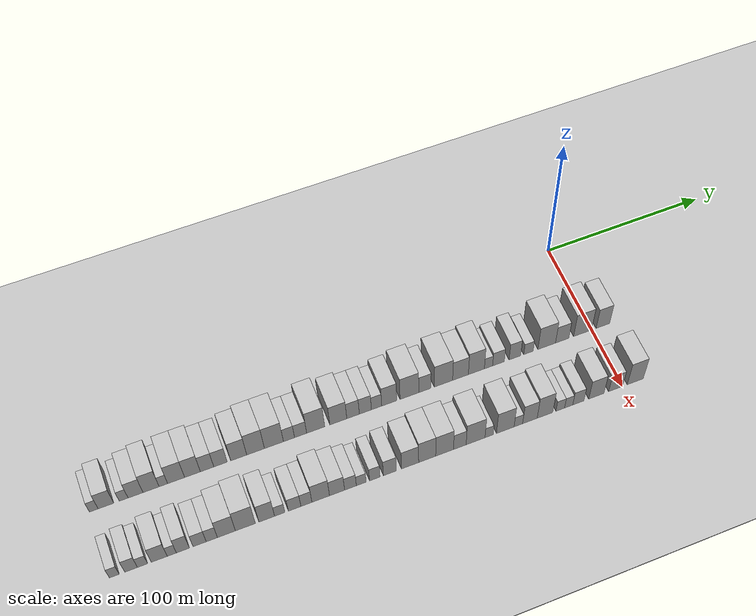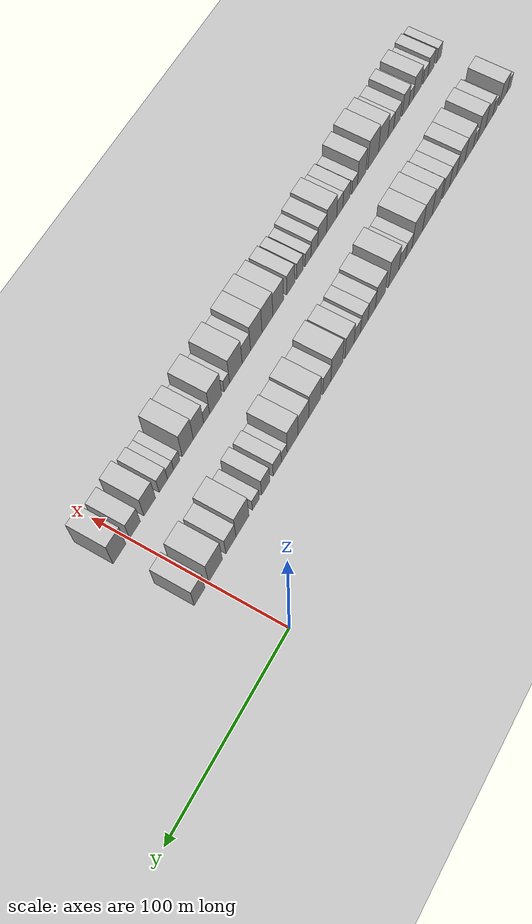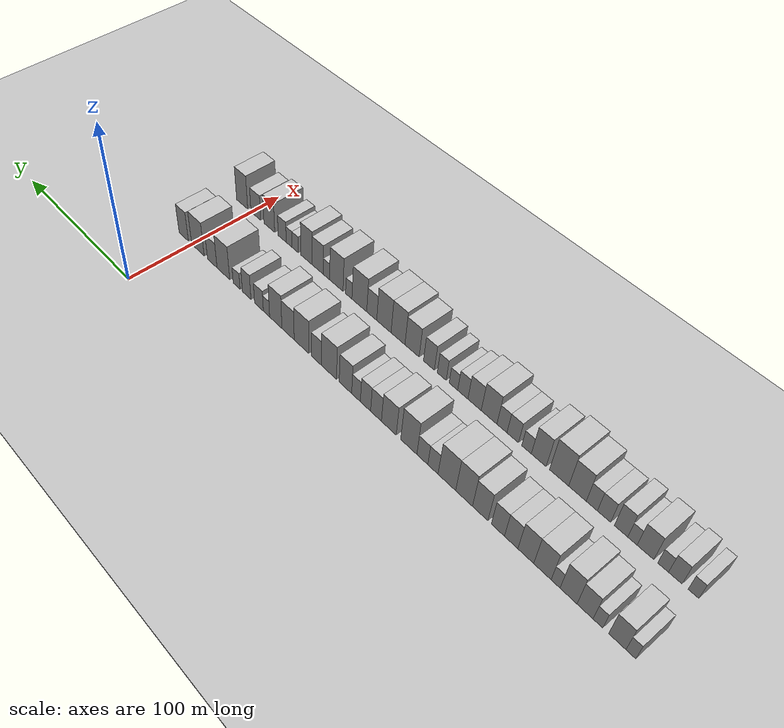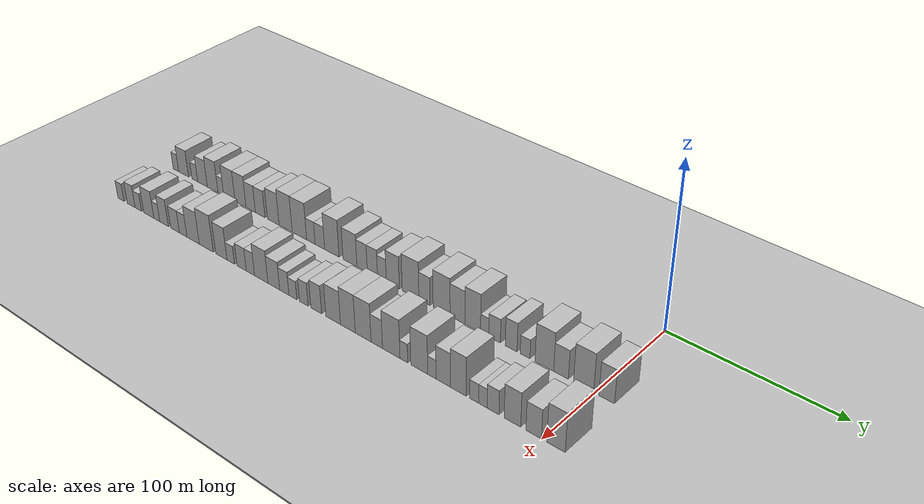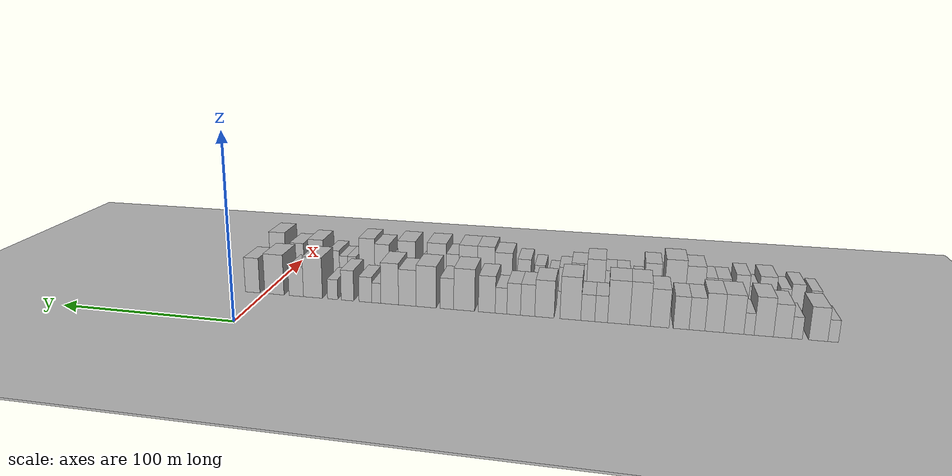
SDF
<sdf version="1.6">
 <world name="default">
  <include><name>ground_plane_1</name><uri>model://HANNAS_ground_plane</uri></include>
  <include>
   <name>ground_plane_2</name>
   <uri>model://HANNAS_ground_plane</uri>
   <pose>100 0 0  0 0 0</pose>
  </include>
  <model name="building_1">
   <static>1</static>
   <pose>50.0000 -297.5715 0 0.000000 0.000000 0.000000</pose>
   <link name="link">
    <pose>0 0 6.00 0 0 0</pose>
    <collision name="collision"><geometry><box><size>20.0000 4.8570 12.0000</size></box></geometry></collision>
    <visual name="visual">
     <cast_shadows>0</cast_shadows>
     <geometry><box><size>20.0000 4.8570 12.0000</size></box></geometry>
     <material>
      <script>
       <uri>model://HANNAS_wall/materials/scripts</uri>
       <uri>model://HANNAS_wall/materials/textures</uri>
       <name>vrc/HANNAS_wall</name>
      </script>
     </material>
    </visual>
   </link>
  </model>
  <model name="building_2">
   <static>1</static>
   <pose>50.0000 -290.7994 0 0.000000 0.000000 0.000000</pose>
   <link name="link">
    <pose>0 0 9.00 0 0 0</pose>
    <collision name="collision"><geometry><box><size>20.0000 8.6872 18.0000</size></box></geometry></collision>
    <visual name="visual">
     <cast_shadows>0</cast_shadows>
     <geometry><box><size>20.0000 8.6872 18.0000</size></box></geometry>
     <material>
      <script>
       <uri>model://HANNAS_wall/materials/scripts</uri>
       <uri>model://HANNAS_wall/materials/textures</uri>
       <name>vrc/HANNAS_wall</name>
      </script>
     </material>
    </visual>
   </link>
  </model>
  <model name="building_3">
   <static>1</static>
   <pose>50.0000 -280.9802 0 0.000000 0.000000 0.000000</pose>
   <link name="link">
    <pose>0 0 6.00 0 0 0</pose>
    <collision name="collision"><geometry><box><size>20.0000 4.9514 12.0000</size></box></geometry></collision>
    <visual name="visual">
     <cast_shadows>0</cast_shadows>
     <geometry><box><size>20.0000 4.9514 12.0000</size></box></geometry>
     <material>
      <script>
       <uri>model://HANNAS_wall/materials/scripts</uri>
       <uri>model://HANNAS_wall/materials/textures</uri>
       <name>vrc/HANNAS_wall</name>
      </script>
     </material>
    </visual>
   </link>
  </model>
  <model name="building_4">
   <static>1</static>
   <pose>50.0000 -274.3003 0 0.000000 0.000000 0.000000</pose>
   <link name="link">
    <pose>0 0 9.00 0 0 0</pose>
    <collision name="collision"><geometry><box><size>20.0000 8.4084 18.0000</size></box></geometry></collision>
    <visual name="visual">
     <cast_shadows>0</cast_shadows>
     <geometry><box><size>20.0000 8.4084 18.0000</size></box></geometry>
     <material>
      <script>
       <uri>model://HANNAS_wall/materials/scripts</uri>
       <uri>model://HANNAS_wall/materials/textures</uri>
       <name>vrc/HANNAS_wall</name>
      </script>
     </material>
    </visual>
   </link>
  </model>
  <model name="building_5">
   <static>1</static>
   <pose>50.0000 -265.5569 0 0.000000 0.000000 0.000000</pose>
   <link name="link">
    <pose>0 0 10.50 0 0 0</pose>
    <collision name="collision"><geometry><box><size>20.0000 9.0783 21.0000</size></box></geometry></collision>
    <visual name="visual">
     <cast_shadows>0</cast_shadows>
     <geometry><box><size>20.0000 9.0783 21.0000</size></box></geometry>
     <material>
      <script>
       <uri>model://HANNAS_wall/materials/scripts</uri>
       <uri>model://HANNAS_wall/materials/textures</uri>
       <name>vrc/HANNAS_wall</name>
      </script>
     </material>
    </visual>
   </link>
  </model>
  <model name="building_6">
   <static>1</static>
   <pose>50.0000 -258.6084 0 0.000000 0.000000 0.000000</pose>
   <link name="link">
    <pose>0 0 6.00 0 0 0</pose>
    <collision name="collision"><geometry><box><size>20.0000 4.8188 12.0000</size></box></geometry></collision>
    <visual name="visual">
     <cast_shadows>0</cast_shadows>
     <geometry><box><size>20.0000 4.8188 12.0000</size></box></geometry>
     <material>
      <script>
       <uri>model://HANNAS_wall/materials/scripts</uri>
       <uri>model://HANNAS_wall/materials/textures</uri>
       <name>vrc/HANNAS_wall</name>
      </script>
     </material>
    </visual>
   </link>
  </model>
  <model name="building_7">
   <static>1</static>
   <pose>50.0000 -251.3825 0 0.000000 0.000000 0.000000</pose>
   <link name="link">
    <pose>0 0 10.50 0 0 0</pose>
    <collision name="collision"><geometry><box><size>20.0000 9.6330 21.0000</size></box></geometry></collision>
    <visual name="visual">
     <cast_shadows>0</cast_shadows>
     <geometry><box><size>20.0000 9.6330 21.0000</size></box></geometry>
     <material>
      <script>
       <uri>model://HANNAS_wall/materials/scripts</uri>
       <uri>model://HANNAS_wall/materials/textures</uri>
       <name>vrc/HANNAS_wall</name>
      </script>
     </material>
    </visual>
   </link>
  </model>
  <model name="building_8">
   <static>1</static>
   <pose>50.0000 -242.0816 0 0.000000 0.000000 0.000000</pose>
   <link name="link">
    <pose>0 0 10.50 0 0 0</pose>
    <collision name="collision"><geometry><box><size>20.0000 8.9687 21.0000</size></box></geometry></collision>
    <visual name="visual">
     <cast_shadows>0</cast_shadows>
     <geometry><box><size>20.0000 8.9687 21.0000</size></box></geometry>
     <material>
      <script>
       <uri>model://HANNAS_wall/materials/scripts</uri>
       <uri>model://HANNAS_wall/materials/textures</uri>
       <name>vrc/HANNAS_wall</name>
      </script>
     </material>
    </visual>
   </link>
  </model>
  <model name="building_9">
   <static>1</static>
   <pose>50.0000 -233.7496 0 0.000000 0.000000 0.000000</pose>
   <link name="link">
    <pose>0 0 9.00 0 0 0</pose>
    <collision name="collision"><geometry><box><size>20.0000 7.6954 18.0000</size></box></geometry></collision>
    <visual name="visual">
     <cast_shadows>0</cast_shadows>
     <geometry><box><size>20.0000 7.6954 18.0000</size></box></geometry>
     <material>
      <script>
       <uri>model://HANNAS_wall/materials/scripts</uri>
       <uri>model://HANNAS_wall/materials/textures</uri>
       <name>vrc/HANNAS_wall</name>
      </script>
     </material>
    </visual>
   </link>
  </model>
  <model name="building_10">
   <static>1</static>
   <pose>50.0000 -226.0455 0 0.000000 0.000000 0.000000</pose>
   <link name="link">
    <pose>0 0 9.00 0 0 0</pose>
    <collision name="collision"><geometry><box><size>20.0000 7.7126 18.0000</size></box></geometry></collision>
    <visual name="visual">
     <cast_shadows>0</cast_shadows>
     <geometry><box><size>20.0000 7.7126 18.0000</size></box></geometry>
     <material>
      <script>
       <uri>model://HANNAS_wall/materials/scripts</uri>
       <uri>model://HANNAS_wall/materials/textures</uri>
       <name>vrc/HANNAS_wall</name>
      </script>
     </material>
    </visual>
   </link>
  </model>
  <model name="building_11">
   <static>1</static>
   <pose>50.0000 -215.5581 0 0.000000 0.000000 0.000000</pose>
   <link name="link">
    <pose>0 0 10.50 0 0 0</pose>
    <collision name="collision"><geometry><box><size>20.0000 9.2623 21.0000</size></box></geometry></collision>
    <visual name="visual">
     <cast_shadows>0</cast_shadows>
     <geometry><box><size>20.0000 9.2623 21.0000</size></box></geometry>
     <material>
      <script>
       <uri>model://HANNAS_wall/materials/scripts</uri>
       <uri>model://HANNAS_wall/materials/textures</uri>
       <name>vrc/HANNAS_wall</name>
      </script>
     </material>
    </visual>
   </link>
  </model>
  <model name="building_12">
   <static>1</static>
   <pose>50.0000 -205.7762 0 0.000000 0.000000 0.000000</pose>
   <link name="link">
    <pose>0 0 12.00 0 0 0</pose>
    <collision name="collision"><geometry><box><size>20.0000 10.3015 24.0000</size></box></geometry></collision>
    <visual name="visual">
     <cast_shadows>0</cast_shadows>
     <geometry><box><size>20.0000 10.3015 24.0000</size></box></geometry>
     <material>
      <script>
       <uri>model://HANNAS_wall/materials/scripts</uri>
       <uri>model://HANNAS_wall/materials/textures</uri>
       <name>vrc/HANNAS_wall</name>
      </script>
     </material>
    </visual>
   </link>
  </model>
  <model name="building_13">
   <static>1</static>
   <pose>50.0000 -195.0669 0 0.000000 0.000000 0.000000</pose>
   <link name="link">
    <pose>0 0 12.00 0 0 0</pose>
    <collision name="collision"><geometry><box><size>20.0000 11.1171 24.0000</size></box></geometry></collision>
    <visual name="visual">
     <cast_shadows>0</cast_shadows>
     <geometry><box><size>20.0000 11.1171 24.0000</size></box></geometry>
     <material>
      <script>
       <uri>model://HANNAS_wall/materials/scripts</uri>
       <uri>model://HANNAS_wall/materials/textures</uri>
       <name>vrc/HANNAS_wall</name>
      </script>
     </material>
    </visual>
   </link>
  </model>
  <model name="building_14">
   <static>1</static>
   <pose>50.0000 -186.2584 0 0.000000 0.000000 0.000000</pose>
   <link name="link">
    <pose>0 0 7.50 0 0 0</pose>
    <collision name="collision"><geometry><box><size>20.0000 6.4999 15.0000</size></box></geometry></collision>
    <visual name="visual">
     <cast_shadows>0</cast_shadows>
     <geometry><box><size>20.0000 6.4999 15.0000</size></box></geometry>
     <material>
      <script>
       <uri>model://HANNAS_wall/materials/scripts</uri>
       <uri>model://HANNAS_wall/materials/textures</uri>
       <name>vrc/HANNAS_wall</name>
      </script>
     </material>
    </visual>
   </link>
  </model>
  <model name="building_15">
   <static>1</static>
   <pose>50.0000 -179.4305 0 0.000000 0.000000 0.000000</pose>
   <link name="link">
    <pose>0 0 7.50 0 0 0</pose>
    <collision name="collision"><geometry><box><size>20.0000 7.1558 15.0000</size></box></geometry></collision>
    <visual name="visual">
     <cast_shadows>0</cast_shadows>
     <geometry><box><size>20.0000 7.1558 15.0000</size></box></geometry>
     <material>
      <script>
       <uri>model://HANNAS_wall/materials/scripts</uri>
       <uri>model://HANNAS_wall/materials/textures</uri>
       <name>vrc/HANNAS_wall</name>
      </script>
     </material>
    </visual>
   </link>
  </model>
  <model name="building_16">
   <static>1</static>
   <pose>50.0000 -170.4923 0 0.000000 0.000000 0.000000</pose>
   <link name="link">
    <pose>0 0 12.00 0 0 0</pose>
    <collision name="collision"><geometry><box><size>20.0000 10.7208 24.0000</size></box></geometry></collision>
    <visual name="visual">
     <cast_shadows>0</cast_shadows>
     <geometry><box><size>20.0000 10.7208 24.0000</size></box></geometry>
     <material>
      <script>
       <uri>model://HANNAS_wall/materials/scripts</uri>
       <uri>model://HANNAS_wall/materials/textures</uri>
       <name>vrc/HANNAS_wall</name>
      </script>
     </material>
    </visual>
   </link>
  </model>
  <model name="building_17">
   <static>1</static>
   <pose>50.0000 -157.0809 0 0.000000 0.000000 0.000000</pose>
   <link name="link">
    <pose>0 0 10.50 0 0 0</pose>
    <collision name="collision"><geometry><box><size>20.0000 10.1021 21.0000</size></box></geometry></collision>
    <visual name="visual">
     <cast_shadows>0</cast_shadows>
     <geometry><box><size>20.0000 10.1021 21.0000</size></box></geometry>
     <material>
      <script>
       <uri>model://HANNAS_wall/materials/scripts</uri>
       <uri>model://HANNAS_wall/materials/textures</uri>
       <name>vrc/HANNAS_wall</name>
      </script>
     </material>
    </visual>
   </link>
  </model>
  <model name="building_18">
   <static>1</static>
   <pose>50.0000 -148.2817 0 0.000000 0.000000 0.000000</pose>
   <link name="link">
    <pose>0 0 9.00 0 0 0</pose>
    <collision name="collision"><geometry><box><size>20.0000 7.4962 18.0000</size></box></geometry></collision>
    <visual name="visual">
     <cast_shadows>0</cast_shadows>
     <geometry><box><size>20.0000 7.4962 18.0000</size></box></geometry>
     <material>
      <script>
       <uri>model://HANNAS_wall/materials/scripts</uri>
       <uri>model://HANNAS_wall/materials/textures</uri>
       <name>vrc/HANNAS_wall</name>
      </script>
     </material>
    </visual>
   </link>
  </model>
  <model name="building_19">
   <static>1</static>
   <pose>50.0000 -140.9135 0 0.000000 0.000000 0.000000</pose>
   <link name="link">
    <pose>0 0 9.00 0 0 0</pose>
    <collision name="collision"><geometry><box><size>20.0000 7.2403 18.0000</size></box></geometry></collision>
    <visual name="visual">
     <cast_shadows>0</cast_shadows>
     <geometry><box><size>20.0000 7.2403 18.0000</size></box></geometry>
     <material>
      <script>
       <uri>model://HANNAS_wall/materials/scripts</uri>
       <uri>model://HANNAS_wall/materials/textures</uri>
       <name>vrc/HANNAS_wall</name>
      </script>
     </material>
    </visual>
   </link>
  </model>
  <model name="building_20">
   <static>1</static>
   <pose>50.0000 -134.1900 0 0.000000 0.000000 0.000000</pose>
   <link name="link">
    <pose>0 0 7.50 0 0 0</pose>
    <collision name="collision"><geometry><box><size>20.0000 6.2068 15.0000</size></box></geometry></collision>
    <visual name="visual">
     <cast_shadows>0</cast_shadows>
     <geometry><box><size>20.0000 6.2068 15.0000</size></box></geometry>
     <material>
      <script>
       <uri>model://HANNAS_wall/materials/scripts</uri>
       <uri>model://HANNAS_wall/materials/textures</uri>
       <name>vrc/HANNAS_wall</name>
      </script>
     </material>
    </visual>
   </link>
  </model>
  <model name="building_21">
   <static>1</static>
   <pose>50.0000 -126.5503 0 0.000000 0.000000 0.000000</pose>
   <link name="link">
    <pose>0 0 10.50 0 0 0</pose>
    <collision name="collision"><geometry><box><size>20.0000 9.0725 21.0000</size></box></geometry></collision>
    <visual name="visual">
     <cast_shadows>0</cast_shadows>
     <geometry><box><size>20.0000 9.0725 21.0000</size></box></geometry>
     <material>
      <script>
       <uri>model://HANNAS_wall/materials/scripts</uri>
       <uri>model://HANNAS_wall/materials/textures</uri>
       <name>vrc/HANNAS_wall</name>
      </script>
     </material>
    </visual>
   </link>
  </model>
  <model name="building_22">
   <static>1</static>
   <pose>50.0000 -114.3188 0 0.000000 0.000000 0.000000</pose>
   <link name="link">
    <pose>0 0 12.00 0 0 0</pose>
    <collision name="collision"><geometry><box><size>20.0000 11.3905 24.0000</size></box></geometry></collision>
    <visual name="visual">
     <cast_shadows>0</cast_shadows>
     <geometry><box><size>20.0000 11.3905 24.0000</size></box></geometry>
     <material>
      <script>
       <uri>model://HANNAS_wall/materials/scripts</uri>
       <uri>model://HANNAS_wall/materials/textures</uri>
       <name>vrc/HANNAS_wall</name>
      </script>
     </material>
    </visual>
   </link>
  </model>
  <model name="building_23">
   <static>1</static>
   <pose>50.0000 -104.8672 0 0.000000 0.000000 0.000000</pose>
   <link name="link">
    <pose>0 0 9.00 0 0 0</pose>
    <collision name="collision"><geometry><box><size>20.0000 7.5128 18.0000</size></box></geometry></collision>
    <visual name="visual">
     <cast_shadows>0</cast_shadows>
     <geometry><box><size>20.0000 7.5128 18.0000</size></box></geometry>
     <material>
      <script>
       <uri>model://HANNAS_wall/materials/scripts</uri>
       <uri>model://HANNAS_wall/materials/textures</uri>
       <name>vrc/HANNAS_wall</name>
      </script>
     </material>
    </visual>
   </link>
  </model>
  <model name="building_24">
   <static>1</static>
   <pose>50.0000 -93.4741 0 0.000000 0.000000 0.000000</pose>
   <link name="link">
    <pose>0 0 12.00 0 0 0</pose>
    <collision name="collision"><geometry><box><size>20.0000 11.2733 24.0000</size></box></geometry></collision>
    <visual name="visual">
     <cast_shadows>0</cast_shadows>
     <geometry><box><size>20.0000 11.2733 24.0000</size></box></geometry>
     <material>
      <script>
       <uri>model://HANNAS_wall/materials/scripts</uri>
       <uri>model://HANNAS_wall/materials/textures</uri>
       <name>vrc/HANNAS_wall</name>
      </script>
     </material>
    </visual>
   </link>
  </model>
  <model name="building_25">
   <static>1</static>
   <pose>50.0000 -82.9544 0 0.000000 0.000000 0.000000</pose>
   <link name="link">
    <pose>0 0 10.50 0 0 0</pose>
    <collision name="collision"><geometry><box><size>20.0000 9.7661 21.0000</size></box></geometry></collision>
    <visual name="visual">
     <cast_shadows>0</cast_shadows>
     <geometry><box><size>20.0000 9.7661 21.0000</size></box></geometry>
     <material>
      <script>
       <uri>model://HANNAS_wall/materials/scripts</uri>
       <uri>model://HANNAS_wall/materials/textures</uri>
       <name>vrc/HANNAS_wall</name>
      </script>
     </material>
    </visual>
   </link>
  </model>
  <model name="building_26">
   <static>1</static>
   <pose>50.0000 -73.1143 0 0.000000 0.000000 0.000000</pose>
   <link name="link">
    <pose>0 0 12.00 0 0 0</pose>
    <collision name="collision"><geometry><box><size>20.0000 9.9142 24.0000</size></box></geometry></collision>
    <visual name="visual">
     <cast_shadows>0</cast_shadows>
     <geometry><box><size>20.0000 9.9142 24.0000</size></box></geometry>
     <material>
      <script>
       <uri>model://HANNAS_wall/materials/scripts</uri>
       <uri>model://HANNAS_wall/materials/textures</uri>
       <name>vrc/HANNAS_wall</name>
      </script>
     </material>
    </visual>
   </link>
  </model>
  <model name="building_27">
   <static>1</static>
   <pose>50.0000 -65.5913 0 0.000000 0.000000 0.000000</pose>
   <link name="link">
    <pose>0 0 6.00 0 0 0</pose>
    <collision name="collision"><geometry><box><size>20.0000 5.1318 12.0000</size></box></geometry></collision>
    <visual name="visual">
     <cast_shadows>0</cast_shadows>
     <geometry><box><size>20.0000 5.1318 12.0000</size></box></geometry>
     <material>
      <script>
       <uri>model://HANNAS_wall/materials/scripts</uri>
       <uri>model://HANNAS_wall/materials/textures</uri>
       <name>vrc/HANNAS_wall</name>
      </script>
     </material>
    </visual>
   </link>
  </model>
  <model name="building_28">
   <static>1</static>
   <pose>50.0000 -59.3571 0 0.000000 0.000000 0.000000</pose>
   <link name="link">
    <pose>0 0 7.50 0 0 0</pose>
    <collision name="collision"><geometry><box><size>20.0000 7.3364 15.0000</size></box></geometry></collision>
    <visual name="visual">
     <cast_shadows>0</cast_shadows>
     <geometry><box><size>20.0000 7.3364 15.0000</size></box></geometry>
     <material>
      <script>
       <uri>model://HANNAS_wall/materials/scripts</uri>
       <uri>model://HANNAS_wall/materials/textures</uri>
       <name>vrc/HANNAS_wall</name>
      </script>
     </material>
    </visual>
   </link>
  </model>
  <model name="building_29">
   <static>1</static>
   <pose>50.0000 -49.0608 0 0.000000 0.000000 0.000000</pose>
   <link name="link">
    <pose>0 0 9.00 0 0 0</pose>
    <collision name="collision"><geometry><box><size>20.0000 7.2563 18.0000</size></box></geometry></collision>
    <visual name="visual">
     <cast_shadows>0</cast_shadows>
     <geometry><box><size>20.0000 7.2563 18.0000</size></box></geometry>
     <material>
      <script>
       <uri>model://HANNAS_wall/materials/scripts</uri>
       <uri>model://HANNAS_wall/materials/textures</uri>
       <name>vrc/HANNAS_wall</name>
      </script>
     </material>
    </visual>
   </link>
  </model>
  <model name="building_30">
   <static>1</static>
   <pose>50.0000 -40.4750 0 0.000000 0.000000 0.000000</pose>
   <link name="link">
    <pose>0 0 6.00 0 0 0</pose>
    <collision name="collision"><geometry><box><size>20.0000 5.9151 12.0000</size></box></geometry></collision>
    <visual name="visual">
     <cast_shadows>0</cast_shadows>
     <geometry><box><size>20.0000 5.9151 12.0000</size></box></geometry>
     <material>
      <script>
       <uri>model://HANNAS_wall/materials/scripts</uri>
       <uri>model://HANNAS_wall/materials/textures</uri>
       <name>vrc/HANNAS_wall</name>
      </script>
     </material>
    </visual>
   </link>
  </model>
  <model name="building_31">
   <static>1</static>
   <pose>50.0000 -28.9358 0 0.000000 0.000000 0.000000</pose>
   <link name="link">
    <pose>0 0 12.00 0 0 0</pose>
    <collision name="collision"><geometry><box><size>20.0000 11.1633 24.0000</size></box></geometry></collision>
    <visual name="visual">
     <cast_shadows>0</cast_shadows>
     <geometry><box><size>20.0000 11.1633 24.0000</size></box></geometry>
     <material>
      <script>
       <uri>model://HANNAS_wall/materials/scripts</uri>
       <uri>model://HANNAS_wall/materials/textures</uri>
       <name>vrc/HANNAS_wall</name>
      </script>
     </material>
    </visual>
   </link>
  </model>
  <model name="building_32">
   <static>1</static>
   <pose>50.0000 -19.0690 0 0.000000 0.000000 0.000000</pose>
   <link name="link">
    <pose>0 0 9.00 0 0 0</pose>
    <collision name="collision"><geometry><box><size>20.0000 8.5704 18.0000</size></box></geometry></collision>
    <visual name="visual">
     <cast_shadows>0</cast_shadows>
     <geometry><box><size>20.0000 8.5704 18.0000</size></box></geometry>
     <material>
      <script>
       <uri>model://HANNAS_wall/materials/scripts</uri>
       <uri>model://HANNAS_wall/materials/textures</uri>
       <name>vrc/HANNAS_wall</name>
      </script>
     </material>
    </visual>
   </link>
  </model>
  <model name="building_33">
   <static>1</static>
   <pose>50.0000 -6.0298 0 0.000000 0.000000 0.000000</pose>
   <link name="link">
    <pose>0 0 12.00 0 0 0</pose>
    <collision name="collision"><geometry><box><size>20.0000 11.5079 24.0000</size></box></geometry></collision>
    <visual name="visual">
     <cast_shadows>0</cast_shadows>
     <geometry><box><size>20.0000 11.5079 24.0000</size></box></geometry>
     <material>
      <script>
       <uri>model://HANNAS_wall/materials/scripts</uri>
       <uri>model://HANNAS_wall/materials/textures</uri>
       <name>vrc/HANNAS_wall</name>
      </script>
     </material>
    </visual>
   </link>
  </model>
  <model name="building_34">
   <static>1</static>
   <pose>50.0000 7.1088 0 0.000000 0.000000 0.000000</pose>
   <link name="link">
    <pose>0 0 10.50 0 0 0</pose>
    <collision name="collision"><geometry><box><size>20.0000 8.7692 21.0000</size></box></geometry></collision>
    <visual name="visual">
     <cast_shadows>0</cast_shadows>
     <geometry><box><size>20.0000 8.7692 21.0000</size></box></geometry>
     <material>
      <script>
       <uri>model://HANNAS_wall/materials/scripts</uri>
       <uri>model://HANNAS_wall/materials/textures</uri>
       <name>vrc/HANNAS_wall</name>
      </script>
     </material>
    </visual>
   </link>
  </model>
  <model name="building_70">
   <static>1</static>
   <pose>90.0000 -297.3264 0 0.000000 0.000000 0.000000</pose>
   <link name="link">
    <pose>0 0 6.00 0 0 0</pose>
    <collision name="collision"><geometry><box><size>20.0000 5.3473 12.0000</size></box></geometry></collision>
    <visual name="visual">
     <cast_shadows>0</cast_shadows>
     <geometry><box><size>20.0000 5.3473 12.0000</size></box></geometry>
     <material>
      <script>
       <uri>model://HANNAS_wall/materials/scripts</uri>
       <uri>model://HANNAS_wall/materials/textures</uri>
       <name>vrc/HANNAS_wall</name>
      </script>
     </material>
    </visual>
   </link>
  </model>
  <model name="building_71">
   <static>1</static>
   <pose>90.0000 -288.2125 0 0.000000 0.000000 0.000000</pose>
   <link name="link">
    <pose>0 0 7.50 0 0 0</pose>
    <collision name="collision"><geometry><box><size>20.0000 6.8805 15.0000</size></box></geometry></collision>
    <visual name="visual">
     <cast_shadows>0</cast_shadows>
     <geometry><box><size>20.0000 6.8805 15.0000</size></box></geometry>
     <material>
      <script>
       <uri>model://HANNAS_wall/materials/scripts</uri>
       <uri>model://HANNAS_wall/materials/textures</uri>
       <name>vrc/HANNAS_wall</name>
      </script>
     </material>
    </visual>
   </link>
  </model>
  <model name="building_72">
   <static>1</static>
   <pose>90.0000 -281.9907 0 0.000000 0.000000 0.000000</pose>
   <link name="link">
    <pose>0 0 6.00 0 0 0</pose>
    <collision name="collision"><geometry><box><size>20.0000 5.5632 12.0000</size></box></geometry></collision>
    <visual name="visual">
     <cast_shadows>0</cast_shadows>
     <geometry><box><size>20.0000 5.5632 12.0000</size></box></geometry>
     <material>
      <script>
       <uri>model://HANNAS_wall/materials/scripts</uri>
       <uri>model://HANNAS_wall/materials/textures</uri>
       <name>vrc/HANNAS_wall</name>
      </script>
     </material>
    </visual>
   </link>
  </model>
  <model name="building_73">
   <static>1</static>
   <pose>90.0000 -272.8366 0 0.000000 0.000000 0.000000</pose>
   <link name="link">
    <pose>0 0 9.00 0 0 0</pose>
    <collision name="collision"><geometry><box><size>20.0000 8.7450 18.0000</size></box></geometry></collision>
    <visual name="visual">
     <cast_shadows>0</cast_shadows>
     <geometry><box><size>20.0000 8.7450 18.0000</size></box></geometry>
     <material>
      <script>
       <uri>model://HANNAS_wall/materials/scripts</uri>
       <uri>model://HANNAS_wall/materials/textures</uri>
       <name>vrc/HANNAS_wall</name>
      </script>
     </material>
    </visual>
   </link>
  </model>
  <model name="building_74">
   <static>1</static>
   <pose>90.0000 -265.9522 0 0.000000 0.000000 0.000000</pose>
   <link name="link">
    <pose>0 0 6.00 0 0 0</pose>
    <collision name="collision"><geometry><box><size>20.0000 5.0237 12.0000</size></box></geometry></collision>
    <visual name="visual">
     <cast_shadows>0</cast_shadows>
     <geometry><box><size>20.0000 5.0237 12.0000</size></box></geometry>
     <material>
      <script>
       <uri>model://HANNAS_wall/materials/scripts</uri>
       <uri>model://HANNAS_wall/materials/textures</uri>
       <name>vrc/HANNAS_wall</name>
      </script>
     </material>
    </visual>
   </link>
  </model>
  <model name="building_75">
   <static>1</static>
   <pose>90.0000 -259.8204 0 0.000000 0.000000 0.000000</pose>
   <link name="link">
    <pose>0 0 9.00 0 0 0</pose>
    <collision name="collision"><geometry><box><size>20.0000 7.2399 18.0000</size></box></geometry></collision>
    <visual name="visual">
     <cast_shadows>0</cast_shadows>
     <geometry><box><size>20.0000 7.2399 18.0000</size></box></geometry>
     <material>
      <script>
       <uri>model://HANNAS_wall/materials/scripts</uri>
       <uri>model://HANNAS_wall/materials/textures</uri>
       <name>vrc/HANNAS_wall</name>
      </script>
     </material>
    </visual>
   </link>
  </model>
  <model name="building_76">
   <static>1</static>
   <pose>90.0000 -250.5476 0 0.000000 0.000000 0.000000</pose>
   <link name="link">
    <pose>0 0 7.50 0 0 0</pose>
    <collision name="collision"><geometry><box><size>20.0000 7.3057 15.0000</size></box></geometry></collision>
    <visual name="visual">
     <cast_shadows>0</cast_shadows>
     <geometry><box><size>20.0000 7.3057 15.0000</size></box></geometry>
     <material>
      <script>
       <uri>model://HANNAS_wall/materials/scripts</uri>
       <uri>model://HANNAS_wall/materials/textures</uri>
       <name>vrc/HANNAS_wall</name>
      </script>
     </material>
    </visual>
   </link>
  </model>
  <model name="building_77">
   <static>1</static>
   <pose>90.0000 -243.7798 0 0.000000 0.000000 0.000000</pose>
   <link name="link">
    <pose>0 0 7.50 0 0 0</pose>
    <collision name="collision"><geometry><box><size>20.0000 6.2300 15.0000</size></box></geometry></collision>
    <visual name="visual">
     <cast_shadows>0</cast_shadows>
     <geometry><box><size>20.0000 6.2300 15.0000</size></box></geometry>
     <material>
      <script>
       <uri>model://HANNAS_wall/materials/scripts</uri>
       <uri>model://HANNAS_wall/materials/textures</uri>
       <name>vrc/HANNAS_wall</name>
      </script>
     </material>
    </visual>
   </link>
  </model>
  <model name="building_78">
   <static>1</static>
   <pose>90.0000 -235.6200 0 0.000000 0.000000 0.000000</pose>
   <link name="link">
    <pose>0 0 10.50 0 0 0</pose>
    <collision name="collision"><geometry><box><size>20.0000 10.0894 21.0000</size></box></geometry></collision>
    <visual name="visual">
     <cast_shadows>0</cast_shadows>
     <geometry><box><size>20.0000 10.0894 21.0000</size></box></geometry>
     <material>
      <script>
       <uri>model://HANNAS_wall/materials/scripts</uri>
       <uri>model://HANNAS_wall/materials/textures</uri>
       <name>vrc/HANNAS_wall</name>
      </script>
     </material>
    </visual>
   </link>
  </model>
  <model name="building_79">
   <static>1</static>
   <pose>90.0000 -224.9740 0 0.000000 0.000000 0.000000</pose>
   <link name="link">
    <pose>0 0 12.00 0 0 0</pose>
    <collision name="collision"><geometry><box><size>20.0000 11.2026 24.0000</size></box></geometry></collision>
    <visual name="visual">
     <cast_shadows>0</cast_shadows>
     <geometry><box><size>20.0000 11.2026 24.0000</size></box></geometry>
     <material>
      <script>
       <uri>model://HANNAS_wall/materials/scripts</uri>
       <uri>model://HANNAS_wall/materials/textures</uri>
       <name>vrc/HANNAS_wall</name>
      </script>
     </material>
    </visual>
   </link>
  </model>
  <model name="building_80">
   <static>1</static>
   <pose>90.0000 -212.9273 0 0.000000 0.000000 0.000000</pose>
   <link name="link">
    <pose>0 0 10.50 0 0 0</pose>
    <collision name="collision"><geometry><box><size>20.0000 8.8908 21.0000</size></box></geometry></collision>
    <visual name="visual">
     <cast_shadows>0</cast_shadows>
     <geometry><box><size>20.0000 8.8908 21.0000</size></box></geometry>
     <material>
      <script>
       <uri>model://HANNAS_wall/materials/scripts</uri>
       <uri>model://HANNAS_wall/materials/textures</uri>
       <name>vrc/HANNAS_wall</name>
      </script>
     </material>
    </visual>
   </link>
  </model>
  <model name="building_81">
   <static>1</static>
   <pose>90.0000 -205.5609 0 0.000000 0.000000 0.000000</pose>
   <link name="link">
    <pose>0 0 6.00 0 0 0</pose>
    <collision name="collision"><geometry><box><size>20.0000 5.8420 12.0000</size></box></geometry></collision>
    <visual name="visual">
     <cast_shadows>0</cast_shadows>
     <geometry><box><size>20.0000 5.8420 12.0000</size></box></geometry>
     <material>
      <script>
       <uri>model://HANNAS_wall/materials/scripts</uri>
       <uri>model://HANNAS_wall/materials/textures</uri>
       <name>vrc/HANNAS_wall</name>
      </script>
     </material>
    </visual>
   </link>
  </model>
  <model name="building_82">
   <static>1</static>
   <pose>90.0000 -197.0568 0 0.000000 0.000000 0.000000</pose>
   <link name="link">
    <pose>0 0 7.50 0 0 0</pose>
    <collision name="collision"><geometry><box><size>20.0000 7.1662 15.0000</size></box></geometry></collision>
    <visual name="visual">
     <cast_shadows>0</cast_shadows>
     <geometry><box><size>20.0000 7.1662 15.0000</size></box></geometry>
     <material>
      <script>
       <uri>model://HANNAS_wall/materials/scripts</uri>
       <uri>model://HANNAS_wall/materials/textures</uri>
       <name>vrc/HANNAS_wall</name>
      </script>
     </material>
    </visual>
   </link>
  </model>
  <model name="building_83">
   <static>1</static>
   <pose>90.0000 -190.3167 0 0.000000 0.000000 0.000000</pose>
   <link name="link">
    <pose>0 0 7.50 0 0 0</pose>
    <collision name="collision"><geometry><box><size>20.0000 6.3139 15.0000</size></box></geometry></collision>
    <visual name="visual">
     <cast_shadows>0</cast_shadows>
     <geometry><box><size>20.0000 6.3139 15.0000</size></box></geometry>
     <material>
      <script>
       <uri>model://HANNAS_wall/materials/scripts</uri>
       <uri>model://HANNAS_wall/materials/textures</uri>
       <name>vrc/HANNAS_wall</name>
      </script>
     </material>
    </visual>
   </link>
  </model>
  <model name="building_84">
   <static>1</static>
   <pose>90.0000 -182.1059 0 0.000000 0.000000 0.000000</pose>
   <link name="link">
    <pose>0 0 10.50 0 0 0</pose>
    <collision name="collision"><geometry><box><size>20.0000 10.1078 21.0000</size></box></geometry></collision>
    <visual name="visual">
     <cast_shadows>0</cast_shadows>
     <geometry><box><size>20.0000 10.1078 21.0000</size></box></geometry>
     <material>
      <script>
       <uri>model://HANNAS_wall/materials/scripts</uri>
       <uri>model://HANNAS_wall/materials/textures</uri>
       <name>vrc/HANNAS_wall</name>
      </script>
     </material>
    </visual>
   </link>
  </model>
  <model name="building_85">
   <static>1</static>
   <pose>90.0000 -172.6864 0 0.000000 0.000000 0.000000</pose>
   <link name="link">
    <pose>0 0 9.00 0 0 0</pose>
    <collision name="collision"><geometry><box><size>20.0000 8.7312 18.0000</size></box></geometry></collision>
    <visual name="visual">
     <cast_shadows>0</cast_shadows>
     <geometry><box><size>20.0000 8.7312 18.0000</size></box></geometry>
     <material>
      <script>
       <uri>model://HANNAS_wall/materials/scripts</uri>
       <uri>model://HANNAS_wall/materials/textures</uri>
       <name>vrc/HANNAS_wall</name>
      </script>
     </material>
    </visual>
   </link>
  </model>
  <model name="building_86">
   <static>1</static>
   <pose>90.0000 -164.9261 0 0.000000 0.000000 0.000000</pose>
   <link name="link">
    <pose>0 0 7.50 0 0 0</pose>
    <collision name="collision"><geometry><box><size>20.0000 6.7894 15.0000</size></box></geometry></collision>
    <visual name="visual">
     <cast_shadows>0</cast_shadows>
     <geometry><box><size>20.0000 6.7894 15.0000</size></box></geometry>
     <material>
      <script>
       <uri>model://HANNAS_wall/materials/scripts</uri>
       <uri>model://HANNAS_wall/materials/textures</uri>
       <name>vrc/HANNAS_wall</name>
      </script>
     </material>
    </visual>
   </link>
  </model>
  <model name="building_87">
   <static>1</static>
   <pose>90.0000 -158.6675 0 0.000000 0.000000 0.000000</pose>
   <link name="link">
    <pose>0 0 6.00 0 0 0</pose>
    <collision name="collision"><geometry><box><size>20.0000 5.7278 12.0000</size></box></geometry></collision>
    <visual name="visual">
     <cast_shadows>0</cast_shadows>
     <geometry><box><size>20.0000 5.7278 12.0000</size></box></geometry>
     <material>
      <script>
       <uri>model://HANNAS_wall/materials/scripts</uri>
       <uri>model://HANNAS_wall/materials/textures</uri>
       <name>vrc/HANNAS_wall</name>
      </script>
     </material>
    </visual>
   </link>
  </model>
  <model name="building_88">
   <static>1</static>
   <pose>90.0000 -150.7495 0 0.000000 0.000000 0.000000</pose>
   <link name="link">
    <pose>0 0 7.50 0 0 0</pose>
    <collision name="collision"><geometry><box><size>20.0000 6.1081 15.0000</size></box></geometry></collision>
    <visual name="visual">
     <cast_shadows>0</cast_shadows>
     <geometry><box><size>20.0000 6.1081 15.0000</size></box></geometry>
     <material>
      <script>
       <uri>model://HANNAS_wall/materials/scripts</uri>
       <uri>model://HANNAS_wall/materials/textures</uri>
       <name>vrc/HANNAS_wall</name>
      </script>
     </material>
    </visual>
   </link>
  </model>
  <model name="building_89">
   <static>1</static>
   <pose>90.0000 -141.8830 0 0.000000 0.000000 0.000000</pose>
   <link name="link">
    <pose>0 0 9.00 0 0 0</pose>
    <collision name="collision"><geometry><box><size>20.0000 7.6249 18.0000</size></box></geometry></collision>
    <visual name="visual">
     <cast_shadows>0</cast_shadows>
     <geometry><box><size>20.0000 7.6249 18.0000</size></box></geometry>
     <material>
      <script>
       <uri>model://HANNAS_wall/materials/scripts</uri>
       <uri>model://HANNAS_wall/materials/textures</uri>
       <name>vrc/HANNAS_wall</name>
      </script>
     </material>
    </visual>
   </link>
  </model>
  <model name="building_90">
   <static>1</static>
   <pose>90.0000 -129.9951 0 0.000000 0.000000 0.000000</pose>
   <link name="link">
    <pose>0 0 10.50 0 0 0</pose>
    <collision name="collision"><geometry><box><size>20.0000 10.1508 21.0000</size></box></geometry></collision>
    <visual name="visual">
     <cast_shadows>0</cast_shadows>
     <geometry><box><size>20.0000 10.1508 21.0000</size></box></geometry>
     <material>
      <script>
       <uri>model://HANNAS_wall/materials/scripts</uri>
       <uri>model://HANNAS_wall/materials/textures</uri>
       <name>vrc/HANNAS_wall</name>
      </script>
     </material>
    </visual>
   </link>
  </model>
  <model name="building_91">
   <static>1</static>
   <pose>90.0000 -119.8618 0 0.000000 0.000000 0.000000</pose>
   <link name="link">
    <pose>0 0 12.00 0 0 0</pose>
    <collision name="collision"><geometry><box><size>20.0000 10.1160 24.0000</size></box></geometry></collision>
    <visual name="visual">
     <cast_shadows>0</cast_shadows>
     <geometry><box><size>20.0000 10.1160 24.0000</size></box></geometry>
     <material>
      <script>
       <uri>model://HANNAS_wall/materials/scripts</uri>
       <uri>model://HANNAS_wall/materials/textures</uri>
       <name>vrc/HANNAS_wall</name>
      </script>
     </material>
    </visual>
   </link>
  </model>
  <model name="building_92">
   <static>1</static>
   <pose>90.0000 -109.4843 0 0.000000 0.000000 0.000000</pose>
   <link name="link">
    <pose>0 0 12.00 0 0 0</pose>
    <collision name="collision"><geometry><box><size>20.0000 10.6390 24.0000</size></box></geometry></collision>
    <visual name="visual">
     <cast_shadows>0</cast_shadows>
     <geometry><box><size>20.0000 10.6390 24.0000</size></box></geometry>
     <material>
      <script>
       <uri>model://HANNAS_wall/materials/scripts</uri>
       <uri>model://HANNAS_wall/materials/textures</uri>
       <name>vrc/HANNAS_wall</name>
      </script>
     </material>
    </visual>
   </link>
  </model>
  <model name="building_93">
   <static>1</static>
   <pose>90.0000 -100.3776 0 0.000000 0.000000 0.000000</pose>
   <link name="link">
    <pose>0 0 9.00 0 0 0</pose>
    <collision name="collision"><geometry><box><size>20.0000 7.5744 18.0000</size></box></geometry></collision>
    <visual name="visual">
     <cast_shadows>0</cast_shadows>
     <geometry><box><size>20.0000 7.5744 18.0000</size></box></geometry>
     <material>
      <script>
       <uri>model://HANNAS_wall/materials/scripts</uri>
       <uri>model://HANNAS_wall/materials/textures</uri>
       <name>vrc/HANNAS_wall</name>
      </script>
     </material>
    </visual>
   </link>
  </model>
  <model name="building_94">
   <static>1</static>
   <pose>90.0000 -90.8906 0 0.000000 0.000000 0.000000</pose>
   <link name="link">
    <pose>0 0 12.00 0 0 0</pose>
    <collision name="collision"><geometry><box><size>20.0000 11.3996 24.0000</size></box></geometry></collision>
    <visual name="visual">
     <cast_shadows>0</cast_shadows>
     <geometry><box><size>20.0000 11.3996 24.0000</size></box></geometry>
     <material>
      <script>
       <uri>model://HANNAS_wall/materials/scripts</uri>
       <uri>model://HANNAS_wall/materials/textures</uri>
       <name>vrc/HANNAS_wall</name>
      </script>
     </material>
    </visual>
   </link>
  </model>
  <model name="building_95">
   <static>1</static>
   <pose>90.0000 -82.7051 0 0.000000 0.000000 0.000000</pose>
   <link name="link">
    <pose>0 0 6.00 0 0 0</pose>
    <collision name="collision"><geometry><box><size>20.0000 4.9714 12.0000</size></box></geometry></collision>
    <visual name="visual">
     <cast_shadows>0</cast_shadows>
     <geometry><box><size>20.0000 4.9714 12.0000</size></box></geometry>
     <material>
      <script>
       <uri>model://HANNAS_wall/materials/scripts</uri>
       <uri>model://HANNAS_wall/materials/textures</uri>
       <name>vrc/HANNAS_wall</name>
      </script>
     </material>
    </visual>
   </link>
  </model>
  <model name="building_96">
   <static>1</static>
   <pose>90.0000 -72.8660 0 0.000000 0.000000 0.000000</pose>
   <link name="link">
    <pose>0 0 12.00 0 0 0</pose>
    <collision name="collision"><geometry><box><size>20.0000 10.7067 24.0000</size></box></geometry></collision>
    <visual name="visual">
     <cast_shadows>0</cast_shadows>
     <geometry><box><size>20.0000 10.7067 24.0000</size></box></geometry>
     <material>
      <script>
       <uri>model://HANNAS_wall/materials/scripts</uri>
       <uri>model://HANNAS_wall/materials/textures</uri>
       <name>vrc/HANNAS_wall</name>
      </script>
     </material>
    </visual>
   </link>
  </model>
  <model name="building_97">
   <static>1</static>
   <pose>90.0000 -64.9010 0 0.000000 0.000000 0.000000</pose>
   <link name="link">
    <pose>0 0 6.00 0 0 0</pose>
    <collision name="collision"><geometry><box><size>20.0000 5.2234 12.0000</size></box></geometry></collision>
    <visual name="visual">
     <cast_shadows>0</cast_shadows>
     <geometry><box><size>20.0000 5.2234 12.0000</size></box></geometry>
     <material>
      <script>
       <uri>model://HANNAS_wall/materials/scripts</uri>
       <uri>model://HANNAS_wall/materials/textures</uri>
       <name>vrc/HANNAS_wall</name>
      </script>
     </material>
    </visual>
   </link>
  </model>
  <model name="building_98">
   <static>1</static>
   <pose>90.0000 -57.8170 0 0.000000 0.000000 0.000000</pose>
   <link name="link">
    <pose>0 0 10.50 0 0 0</pose>
    <collision name="collision"><geometry><box><size>20.0000 8.9444 21.0000</size></box></geometry></collision>
    <visual name="visual">
     <cast_shadows>0</cast_shadows>
     <geometry><box><size>20.0000 8.9444 21.0000</size></box></geometry>
     <material>
      <script>
       <uri>model://HANNAS_wall/materials/scripts</uri>
       <uri>model://HANNAS_wall/materials/textures</uri>
       <name>vrc/HANNAS_wall</name>
      </script>
     </material>
    </visual>
   </link>
  </model>
  <model name="building_99">
   <static>1</static>
   <pose>90.0000 -48.5431 0 0.000000 0.000000 0.000000</pose>
   <link name="link">
    <pose>0 0 12.00 0 0 0</pose>
    <collision name="collision"><geometry><box><size>20.0000 9.6035 24.0000</size></box></geometry></collision>
    <visual name="visual">
     <cast_shadows>0</cast_shadows>
     <geometry><box><size>20.0000 9.6035 24.0000</size></box></geometry>
     <material>
      <script>
       <uri>model://HANNAS_wall/materials/scripts</uri>
       <uri>model://HANNAS_wall/materials/textures</uri>
       <name>vrc/HANNAS_wall</name>
      </script>
     </material>
    </visual>
   </link>
  </model>
  <model name="building_100">
   <static>1</static>
   <pose>90.0000 -39.0788 0 0.000000 0.000000 0.000000</pose>
   <link name="link">
    <pose>0 0 6.00 0 0 0</pose>
    <collision name="collision"><geometry><box><size>20.0000 5.3250 12.0000</size></box></geometry></collision>
    <visual name="visual">
     <cast_shadows>0</cast_shadows>
     <geometry><box><size>20.0000 5.3250 12.0000</size></box></geometry>
     <material>
      <script>
       <uri>model://HANNAS_wall/materials/scripts</uri>
       <uri>model://HANNAS_wall/materials/textures</uri>
       <name>vrc/HANNAS_wall</name>
      </script>
     </material>
    </visual>
   </link>
  </model>
  <model name="building_101">
   <static>1</static>
   <pose>90.0000 -33.8827 0 0.000000 0.000000 0.000000</pose>
   <link name="link">
    <pose>0 0 6.00 0 0 0</pose>
    <collision name="collision"><geometry><box><size>20.0000 5.0672 12.0000</size></box></geometry></collision>
    <visual name="visual">
     <cast_shadows>0</cast_shadows>
     <geometry><box><size>20.0000 5.0672 12.0000</size></box></geometry>
     <material>
      <script>
       <uri>model://HANNAS_wall/materials/scripts</uri>
       <uri>model://HANNAS_wall/materials/textures</uri>
       <name>vrc/HANNAS_wall</name>
      </script>
     </material>
    </visual>
   </link>
  </model>
  <model name="building_102">
   <static>1</static>
   <pose>90.0000 -27.8650 0 0.000000 0.000000 0.000000</pose>
   <link name="link">
    <pose>0 0 7.50 0 0 0</pose>
    <collision name="collision"><geometry><box><size>20.0000 6.9681 15.0000</size></box></geometry></collision>
    <visual name="visual">
     <cast_shadows>0</cast_shadows>
     <geometry><box><size>20.0000 6.9681 15.0000</size></box></geometry>
     <material>
      <script>
       <uri>model://HANNAS_wall/materials/scripts</uri>
       <uri>model://HANNAS_wall/materials/textures</uri>
       <name>vrc/HANNAS_wall</name>
      </script>
     </material>
    </visual>
   </link>
  </model>
  <model name="building_103">
   <static>1</static>
   <pose>90.0000 -16.6243 0 0.000000 0.000000 0.000000</pose>
   <link name="link">
    <pose>0 0 10.50 0 0 0</pose>
    <collision name="collision"><geometry><box><size>20.0000 9.5133 21.0000</size></box></geometry></collision>
    <visual name="visual">
     <cast_shadows>0</cast_shadows>
     <geometry><box><size>20.0000 9.5133 21.0000</size></box></geometry>
     <material>
      <script>
       <uri>model://HANNAS_wall/materials/scripts</uri>
       <uri>model://HANNAS_wall/materials/textures</uri>
       <name>vrc/HANNAS_wall</name>
      </script>
     </material>
    </visual>
   </link>
  </model>
  <model name="building_104">
   <static>1</static>
   <pose>90.0000 -4.5138 0 0.000000 0.000000 0.000000</pose>
   <link name="link">
    <pose>0 0 9.00 0 0 0</pose>
    <collision name="collision"><geometry><box><size>20.0000 8.7078 18.0000</size></box></geometry></collision>
    <visual name="visual">
     <cast_shadows>0</cast_shadows>
     <geometry><box><size>20.0000 8.7078 18.0000</size></box></geometry>
     <material>
      <script>
       <uri>model://HANNAS_wall/materials/scripts</uri>
       <uri>model://HANNAS_wall/materials/textures</uri>
       <name>vrc/HANNAS_wall</name>
      </script>
     </material>
    </visual>
   </link>
  </model>
  <model name="building_105">
   <static>1</static>
   <pose>90.0000 7.9222 0 0.000000 0.000000 0.000000</pose>
   <link name="link">
    <pose>0 0 12.00 0 0 0</pose>
    <collision name="collision"><geometry><box><size>20.0000 10.1640 24.0000</size></box></geometry></collision>
    <visual name="visual">
     <cast_shadows>0</cast_shadows>
     <geometry><box><size>20.0000 10.1640 24.0000</size></box></geometry>
     <material>
      <script>
       <uri>model://HANNAS_wall/materials/scripts</uri>
       <uri>model://HANNAS_wall/materials/textures</uri>
       <name>vrc/HANNAS_wall</name>
      </script>
     </material>
    </visual>
   </link>
  </model>
 </world>
</sdf>
